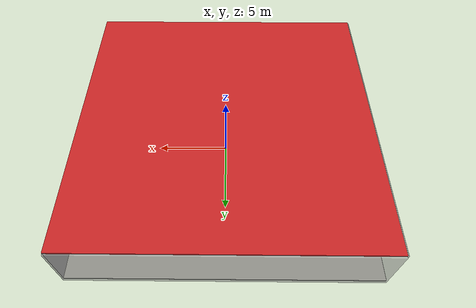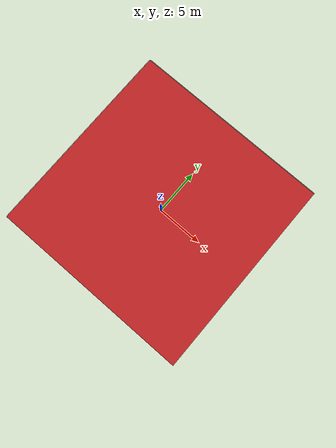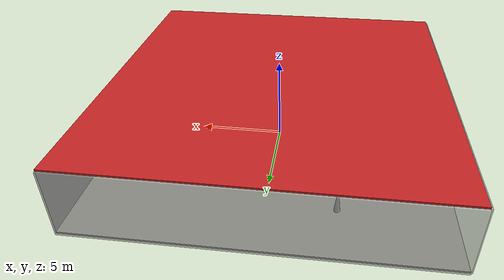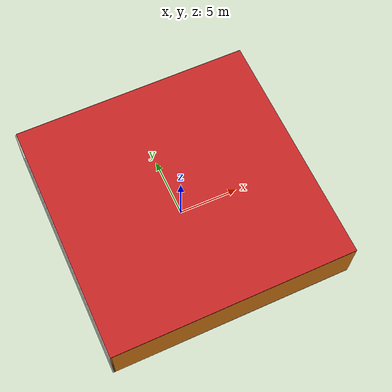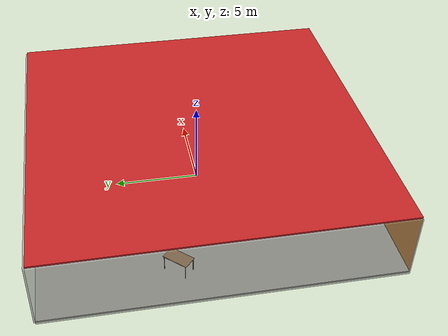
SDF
<sdf version="1.4">
 <world name="default">
  <physics type="ode">
   <max_step_size>0.001</max_step_size>
   <real_time_factor>1</real_time_factor>
   <real_time_update_rate>1000</real_time_update_rate>
   <gravity>0 0 -9.8</gravity>
  </physics>
  <scene><ambient>0.4 0.4 0.4 1</ambient><background>0.7 0.7 0.7 1</background><shadows>1</shadows></scene>
  <model name="Surrounding">
   <static>1</static>
   <link name="Ceiling">
    <collision name="Ceiling_Collision"><geometry><box><size>20 20 0.1</size></box></geometry></collision>
    <visual name="Ceiling_Visual">
     <geometry><box><size>20 20 0.1</size></box></geometry>
     <material>
      <script><uri>file://media/materials/scripts/gazebo.material</uri><name>Gazebo/RedBright</name></script>
     </material>
    </visual>
    <pose>0 0 4.05 0 0 0</pose>
   </link>
   <link name="Wall_South">
    <collision name="Wall_South_Collision">
     <geometry><box><size>20 0 4</size></box></geometry>
     <pose>0 0 2 0 -0 0</pose>
    </collision>
    <visual name="Wall_South_Visual">
     <pose>0 0 2 0 -0 0</pose>
     <geometry><box><size>20 0 4</size></box></geometry>
     <material>
      <script><uri>file://media/materials/scripts/gazebo.material</uri><name>Gazebo/Orange</name></script>
     </material>
    </visual>
    <velocity_decay><linear>0</linear><angular>0</angular></velocity_decay>
    <pose>0 -10 0 0 -0 0</pose>
   </link>
   <link name="Wall_East">
    <collision name="Wall_21_Collision">
     <geometry><box><size>20 0 4</size></box></geometry>
     <pose>0 0 2 0 -0 0</pose>
    </collision>
    <visual name="Wall_21_Visual">
     <pose>0 0 2 0 -0 0</pose>
     <geometry><box><size>20 0 4</size></box></geometry>
     <material>
      <script><uri>file://media/materials/scripts/gazebo.material</uri><name>Gazebo/CeilingTiled</name></script>
     </material>
    </visual>
    <velocity_decay><linear>0</linear><angular>0</angular></velocity_decay>
    <pose>10 0 0 0 -0 1.5708</pose>
   </link>
   <link name="Wall_North">
    <collision name="Wall_22_Collision">
     <geometry><box><size>20 0.2 4</size></box></geometry>
     <pose>0 0 2 0 -0 0</pose>
    </collision>
    <visual name="Wall_22_Visual">
     <pose>0 0 2 0 -0 0</pose>
     <geometry><box><size>20 0.2 4</size></box></geometry>
     <material>
      <script><uri>file://media/materials/scripts/gazebo.material</uri><name>Gazebo/GreyTransparent</name></script>
     </material>
    </visual>
    <velocity_decay><linear>0</linear><angular>0</angular></velocity_decay>
    <pose>0 10 0 0 -0 0</pose>
   </link>
   <link name="Wall_West">
    <collision name="Wall_23_Collision">
     <geometry><box><size>20 0.2 4</size></box></geometry>
     <pose>0 0 2 0 -0 0</pose>
    </collision>
    <visual name="Wall_23_Visual">
     <pose>0 0 2 0 -0 0</pose>
     <geometry><box><size>20 0.2 4</size></box></geometry>
     <material>
      <script><uri>file://media/materials/scripts/gazebo.material</uri><name>Gazebo/GreyTransparent</name></script>
     </material>
    </visual>
    <velocity_decay><linear>0</linear><angular>0</angular></velocity_decay>
    <pose>-10 0 0 0 0 -1.5708</pose>
   </link>
   <link name="Ground_link">
    <collision name="collision">
     <pose>0 0 .05 0 -0 0</pose>
     <geometry><box><size>20 20 0.1</size></box></geometry>
    </collision>
    <visual name="visual">
     <pose>0 0 .05 0 -0 0</pose>
     <geometry><box><size>20 20 0.1</size></box></geometry>
     <material>
      <script><uri>file://media/materials/scripts/gazebo.material</uri><name>Gazebo/PaintedWall</name></script>
     </material>
    </visual>
   </link>
   <static>1</static>
  </model>
  <spherical_coordinates>
   <surface_model>EARTH_WGS84</surface_model>
   <latitude_deg>0</latitude_deg>
   <longitude_deg>0</longitude_deg>
   <elevation>0</elevation>
   <heading_deg>0</heading_deg>
  </spherical_coordinates>
  <light name="lightball_0" type="diffuse">
   <diffuse>0.8 0.8 0.8 1</diffuse>
   <specular>0.2 0.2 0.2 1</specular>
   <attenuation>
    <range>100</range>
    <constant>0.7</constant>
    <linear>0.01</linear>
    <quadratic>0.001</quadratic>
   </attenuation>
   <direction>-0.5 0.1 -0.9</direction>
   <pose>0.327614640277 1.09251792548 1.49626604573 0 0 0</pose>
  </light>
  <light name="lightball_1" type="diffuse">
   <diffuse>0.8 0.8 0.8 1</diffuse>
   <specular>0.2 0.2 0.2 1</specular>
   <attenuation>
    <range>100</range>
    <constant>0.7</constant>
    <linear>0.01</linear>
    <quadratic>0.001</quadratic>
   </attenuation>
   <direction>-0.5 0.1 -0.9</direction>
   <pose>4.2669347617 1.87620480136 3.55149485952 0 0 0</pose>
  </light>
  <light name="lightball_2" type="diffuse">
   <diffuse>0.8 0.8 0.8 1</diffuse>
   <specular>0.2 0.2 0.2 1</specular>
   <attenuation>
    <range>100</range>
    <constant>0.7</constant>
    <linear>0.01</linear>
    <quadratic>0.001</quadratic>
   </attenuation>
   <direction>-0.5 0.1 -0.9</direction>
   <pose>-0.223097400637 4.09398180831 0.53076245633 0 0 0</pose>
  </light>
  <light name="lightball_3" type="diffuse">
   <diffuse>0.8 0.8 0.8 1</diffuse>
   <specular>0.2 0.2 0.2 1</specular>
   <attenuation>
    <range>100</range>
    <constant>0.7</constant>
    <linear>0.01</linear>
    <quadratic>0.001</quadratic>
   </attenuation>
   <direction>-0.5 0.1 -0.9</direction>
   <pose>9.85482969342 -6.40028694094 3.26423255226 0 0 0</pose>
  </light>
  <include><uri>model://table</uri><pose>-7.72546965575 2.30122720504 0 0 0 0.830407578147</pose></include>
  <include>
   <uri>model://textured_shapes</uri>
   <pose>-4.21107248813 -7.6818298213 0 0 0 1.75387128242</pose>
  </include>
  <include><uri>model://table</uri><pose>-3.82728420875 -5.51841760181 0 0 0 2.3445383328</pose></include>
  <include>
   <uri>model://construction_cone</uri>
   <pose>-3.85443357147 6.80467394402 0 0 0 2.94647005257</pose>
  </include>
  <include><uri>model://cabinet</uri><pose>7.92663525171 -7.45449567753 0 0 0 0.302171813258</pose></include>
 </world>
</sdf>

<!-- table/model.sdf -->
<sdf version="1.5">
  <model name="table">
    <static>true</static>
    <link name="link">
      <collision name="surface">
        <pose>0 0 1.0 0 0 0</pose>
        <geometry>
          <box>
            <size>1.5 0.8 0.03</size>
          </box>
        </geometry>
        <surface>
          <friction>
            <ode>
              <mu>0.6</mu>
              <mu2>0.6</mu2>
            </ode>
          </friction>
        </surface>
      </collision>
      <visual name="visual1">
        <pose>0 0 1.0 0 0 0</pose>
        <geometry>
          <box>
            <size>1.5 0.8 0.03</size>
          </box>
        </geometry>
        <material>
          <script>
            <uri>model://media/materials/scripts/gazebo.material</uri>
            <name>Gazebo/Wood</name>
          </script>
        </material>
      </visual>
      <collision name="front_left_leg">
        <pose>0.68 0.38 0.5 0 0 0</pose>
        <geometry>
          <cylinder>
            <radius>0.02</radius>
            <length>1.0</length>
          </cylinder>
        </geometry>
      </collision>
      <visual name="front_left_leg">
        <pose>0.68 0.38 0.5 0 0 0</pose>
        <geometry>
          <cylinder>
            <radius>0.02</radius>
            <length>1.0</length>
          </cylinder>
        </geometry>
        <material>
          <script>
            <uri>model://media/materials/scripts/gazebo.material</uri>
            <name>Gazebo/Grey</name>
          </script>
        </material>
      </visual>
      <collision name="front_right_leg">
        <pose>0.68 -0.38 0.5 0 0 0</pose>
        <geometry>
          <cylinder>
            <radius>0.02</radius>
            <length>1.0</length>
          </cylinder>
        </geometry>
      </collision>
      <visual name="front_right_leg">
        <pose>0.68 -0.38 0.5 0 0 0</pose>
        <geometry>
          <cylinder>
            <radius>0.02</radius>
            <length>1.0</length>
          </cylinder>
        </geometry>
        <material>
          <script>
            <uri>model://media/materials/scripts/gazebo.material</uri>
            <name>Gazebo/Grey</name>
          </script>
        </material>
      </visual>
      <collision name="back_right_leg">
        <pose>-0.68 -0.38 0.5 0 0 0</pose>
        <geometry>
          <cylinder>
            <radius>0.02</radius>
            <length>1.0</length>
          </cylinder>
        </geometry>
      </collision>
      <visual name="back_right_leg">
        <pose>-0.68 -0.38 0.5 0 0 0</pose>
        <geometry>
          <cylinder>
            <radius>0.02</radius>
            <length>1.0</length>
          </cylinder>
        </geometry>
        <material>
          <script>
            <uri>model://media/materials/scripts/gazebo.material</uri>
            <name>Gazebo/Grey</name>
          </script>
        </material>
      </visual>
      <collision name="back_left_leg">
        <pose>-0.68 0.38 0.5 0 0 0</pose>
        <geometry>
          <cylinder>
            <radius>0.02</radius>
            <length>1.0</length>
          </cylinder>
        </geometry>
      </collision>
      <visual name="back_left_leg">
        <pose>-0.68 0.38 0.5 0 0 0</pose>
        <geometry>
          <cylinder>
            <radius>0.02</radius>
            <length>1.0</length>
          </cylinder>
        </geometry>
        <material>
          <script>
            <uri>model://media/materials/scripts/gazebo.material</uri>
            <name>Gazebo/Grey</name>
          </script>
        </material>
      </visual>
    </link>
  </model>
</sdf>

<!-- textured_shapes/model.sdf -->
<sdf version="1.6">
  <model name="textured_shapes">
    <pose>0 0 0.5 0 0 0</pose>
    <link name="box">
      <pose>0 -1.5 0 0 0 0</pose>
      <collision name="collision">
        <geometry>
          <box>
            <size>1 1 1</size>
          </box>
        </geometry>
      </collision>
      <visual name="visual">
        <geometry>
          <box>
            <size>1 1 1</size>
          </box>
        </geometry>
        <material>
          <script>
            <uri>model://../model_source/models/textured_shapes/materials/scripts</uri>
            <uri>model://../model_source/models/textured_shapes/materials/textures</uri>
            <name>TexturedShape/Squares</name>
          </script>
        </material>
      </visual>
    </link>
    <link name="sphere">
      <collision name="collision">
        <geometry>
          <sphere>
            <radius>0.5</radius>
          </sphere>
        </geometry>
      </collision>
      <visual name="visual">
        <geometry>
          <sphere>
            <radius>0.5</radius>
          </sphere>
        </geometry>
        <material>
          <script>
            <uri>model://../model_source/models/textured_shapes/materials/scripts</uri>
            <uri>model://../model_source/models/textured_shapes/materials/textures</uri>
            <name>TexturedShape/Squares</name>
          </script>
        </material>
      </visual>
    </link>
    <link name="cylinder">
      <pose>0 1.5 0 0 0 0</pose>
      <collision name="collision">
        <geometry>
          <cylinder>
            <radius>0.5</radius>
            <length>1</length>
          </cylinder>
        </geometry>
      </collision>
      <visual name="visual">
        <geometry>
          <cylinder>
            <radius>0.5</radius>
            <length>1</length>
          </cylinder>
        </geometry>
        <material>
          <script>
            <uri>model://../model_source/models/textured_shapes/materials/scripts</uri>
            <uri>model://../model_source/models/textured_shapes/materials/textures</uri>
            <name>TexturedShape/Squares</name>
          </script>
        </material>
      </visual>
    </link>
  </model>
</sdf>

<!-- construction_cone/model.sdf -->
<sdf version="1.5">
  <model name="Construction Cone">
    <link name="link">
      <collision name="collision">
        <geometry>
          <mesh>
            <scale>10 10 10</scale>
            <uri>file://isr-testbed/construction_cone/meshes/construction_cone.dae</uri>
          </mesh>
        </geometry>
      </collision>
      <visual name="visual">
        <geometry>
          <mesh>
            <scale>10 10 10</scale>
            <uri>file://isr-testbed/construction_cone/meshes/construction_cone.dae</uri>
          </mesh>
        </geometry>
      </visual>
    </link>
  </model>
</sdf>

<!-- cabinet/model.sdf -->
<sdf version="1.5">
  <model name="cabinet">
    <static>true</static>
    <link name="cabinet_bottom_plate">
      <inertial>
        <pose>0 0 -1 0 0 0</pose>
        <inertia>
          <ixx>2.050000</ixx>
          <ixy>0</ixy>
          <ixz>0</ixz>
          <iyy>2.050000</iyy>
          <iyz>0</iyz>
          <izz>2.050000</izz>
        </inertia>
        <mass>25.000000</mass>
      </inertial>
      <collision name="cabinet_bottom_plate_geom">
        <pose>0 0 0.010000 0 0 0</pose>
        <geometry>
          <box>
            <size>0.450000 0.450000 0.020000</size>
          </box>
        </geometry>
      </collision>
      <visual name="cabinet_bottom_plate_geom_visual">
        <pose>0 0 0.010000 0 0 0</pose>
        <geometry>
          <box>
            <size>0.450000 0.450000 0.020000</size>
          </box>
        </geometry>
        <material>
          <script>
            <uri>model://media/materials/scripts/gazebo.material</uri>
            <name>Gazebo/Wood</name>
          </script>
        </material>
      </visual>
      <collision name="cabinet_bottom_plate_geom_cabinet_back_plate">
        <pose>0.235000 0 0.510000 0 0 0</pose>
        <geometry>
          <box>
            <size>0.020000 0.450000 1.020000</size>
          </box>
        </geometry>
      </collision>
      <visual name="cabinet_bottom_plate_geom_cabinet_back_plate_visual">
        <pose>0.235000 0 0.510000 0 0 0</pose>
        <geometry>
          <box>
            <size>0.020000 0.450000 1.020000</size>
          </box>
        </geometry>
        <material>
          <script>
            <uri>model://media/materials/scripts/gazebo.material</uri>
            <name>Gazebo/Wood</name>
          </script>
        </material>
      </visual>
      <collision name="cabinet_bottom_plate_geom_cabinet_left_plate">
        <pose>0 0.235000 0.510000 0 0 0</pose>
        <geometry>
          <box>
            <size>0.450000 0.020000 1.020000</size>
          </box>
        </geometry>
      </collision>
      <visual name="cabinet_bottom_plate_geom_cabinet_left_plate_visual">
        <pose>0 0.235000 0.510000 0 0 0</pose>
        <geometry>
          <box>
            <size>0.450000 0.020000 1.020000</size>
          </box>
        </geometry>
        <material>
          <script>
            <uri>model://media/materials/scripts/gazebo.material</uri>
            <name>Gazebo/Wood</name>
          </script>
        </material>
      </visual>
      <collision name="cabinet_bottom_plate_geom_cabinet_middle_plate">
        <pose>0 0 0.510000 0 0 0</pose>
        <geometry>
          <box>
            <size>0.450000 0.450000 0.020000</size>
          </box>
        </geometry>
      </collision>
      <visual name="cabinet_bottom_plate_geom_cabinet_middle_plate_visual">
        <pose>0 0 0.510000 0 0 0</pose>
        <geometry>
          <box>
            <size>0.450000 0.450000 0.020000</size>
          </box>
        </geometry>
        <material>
          <script>
            <uri>model://media/materials/scripts/gazebo.material</uri>
            <name>Gazebo/Wood</name>
          </script>
        </material>
      </visual>
      <collision name="cabinet_bottom_plate_geom_cabinet_right_plate">
        <pose>0 -0.235000 0.510000 0 0 0</pose>
        <geometry>
          <box>
            <size>0.450000 0.020000 1.020000</size>
          </box>
        </geometry>
      </collision>
      <visual name="cabinet_bottom_plate_geom_cabinet_right_plate_visual">
        <pose>0 -0.235000 0.510000 0 0 0</pose>
        <geometry>
          <box>
            <size>0.450000 0.020000 1.020000</size>
          </box>
        </geometry>
        <material>
          <script>
            <uri>model://media/materials/scripts/gazebo.material</uri>
            <name>Gazebo/Wood</name>
          </script>
        </material>
      </visual>
      <collision name="cabinet_bottom_plate_geom_cabinet_top_plate">
        <pose>0 0 1.010000 0 0 0</pose>
        <geometry>
          <box>
            <size>0.450000 0.450000 0.020000</size>
          </box>
        </geometry>
      </collision>
      <visual name="cabinet_bottom_plate_geom_cabinet_top_plate_visual">
        <pose>0 0 1.010000 0 0 0</pose>
        <geometry>
          <box>
            <size>0.450000 0.450000 0.020000</size>
          </box>
        </geometry>
        <material>
          <script>
            <uri>model://media/materials/scripts/gazebo.material</uri>
            <name>Gazebo/Wood</name>
          </script>
        </material>
      </visual>
    </link>
  </model>
</sdf>
